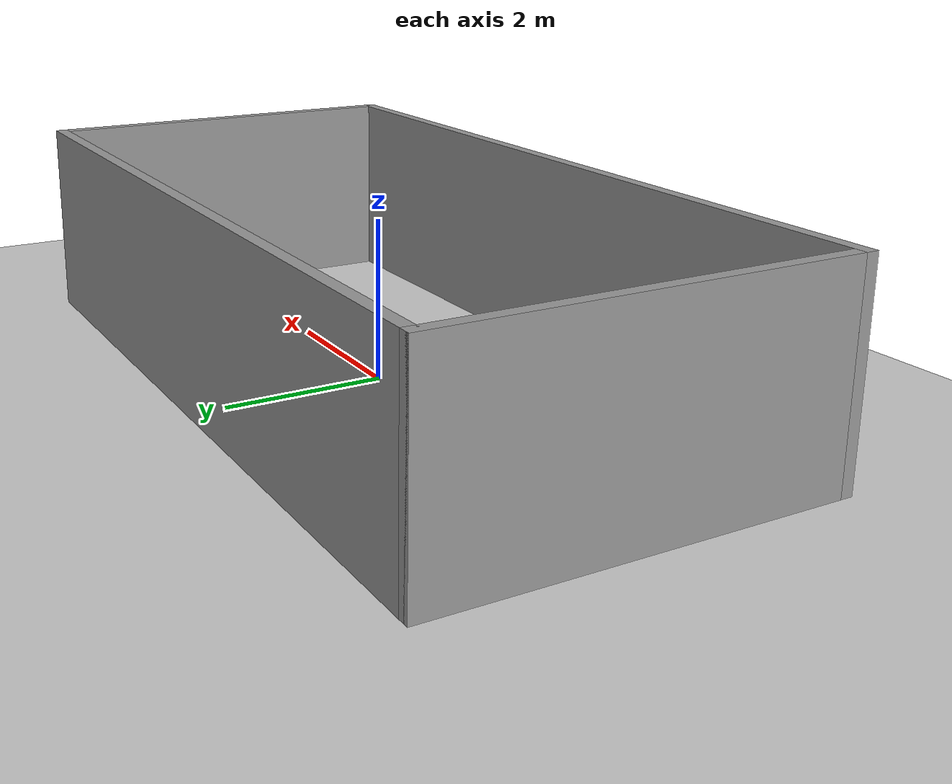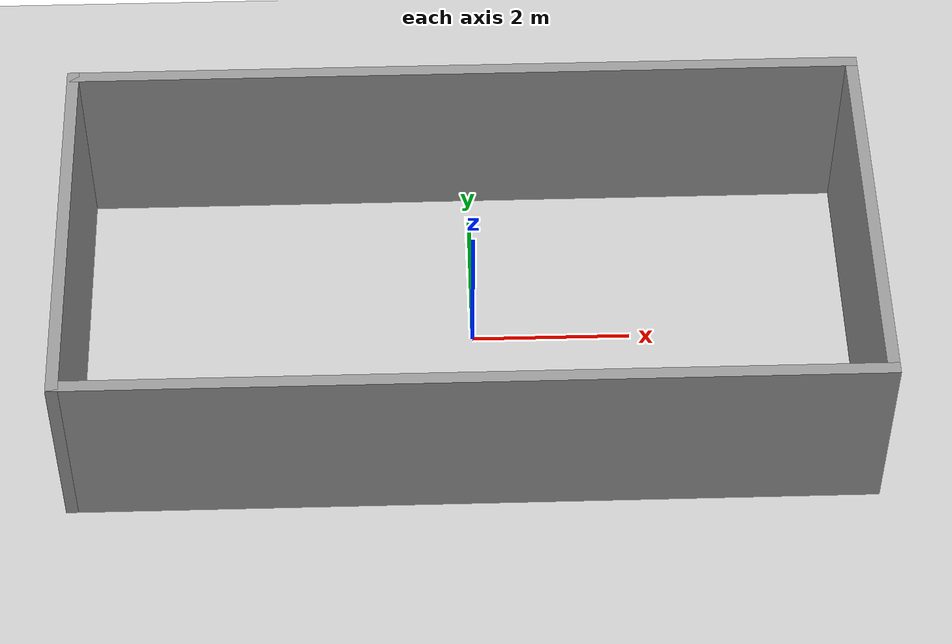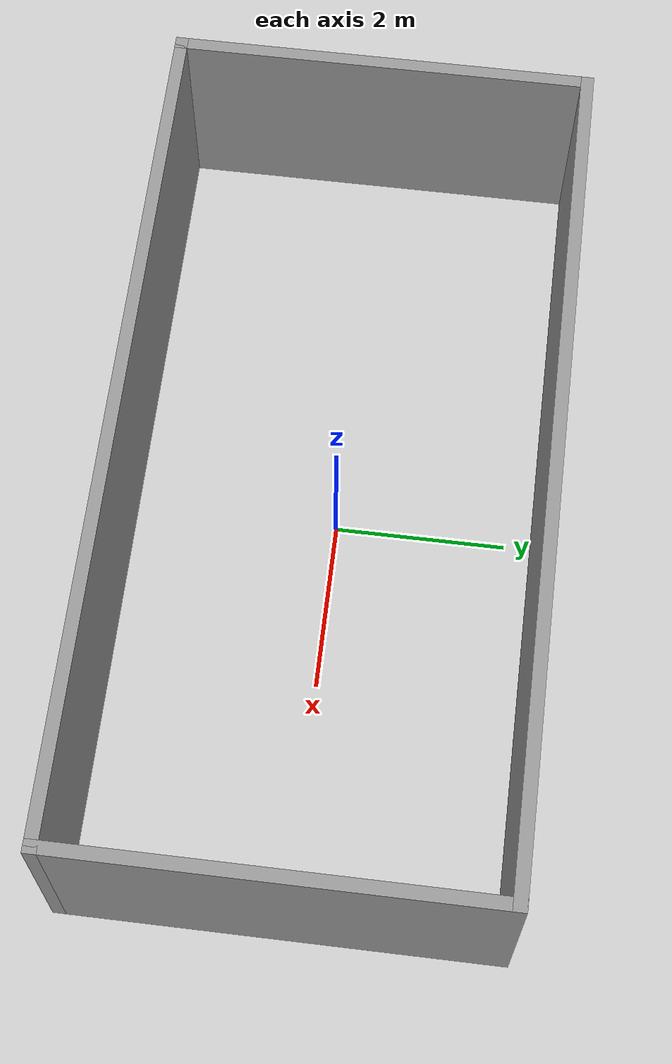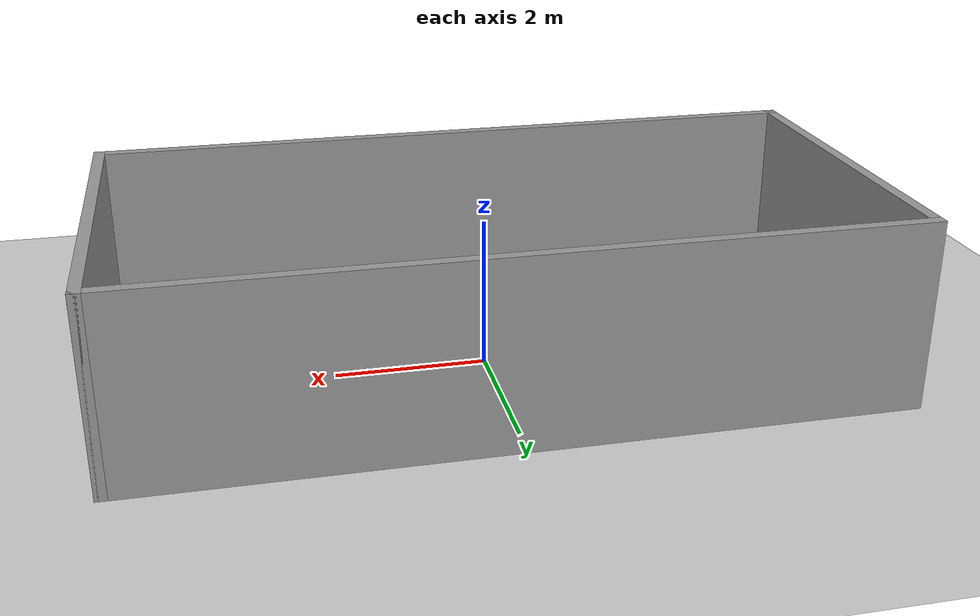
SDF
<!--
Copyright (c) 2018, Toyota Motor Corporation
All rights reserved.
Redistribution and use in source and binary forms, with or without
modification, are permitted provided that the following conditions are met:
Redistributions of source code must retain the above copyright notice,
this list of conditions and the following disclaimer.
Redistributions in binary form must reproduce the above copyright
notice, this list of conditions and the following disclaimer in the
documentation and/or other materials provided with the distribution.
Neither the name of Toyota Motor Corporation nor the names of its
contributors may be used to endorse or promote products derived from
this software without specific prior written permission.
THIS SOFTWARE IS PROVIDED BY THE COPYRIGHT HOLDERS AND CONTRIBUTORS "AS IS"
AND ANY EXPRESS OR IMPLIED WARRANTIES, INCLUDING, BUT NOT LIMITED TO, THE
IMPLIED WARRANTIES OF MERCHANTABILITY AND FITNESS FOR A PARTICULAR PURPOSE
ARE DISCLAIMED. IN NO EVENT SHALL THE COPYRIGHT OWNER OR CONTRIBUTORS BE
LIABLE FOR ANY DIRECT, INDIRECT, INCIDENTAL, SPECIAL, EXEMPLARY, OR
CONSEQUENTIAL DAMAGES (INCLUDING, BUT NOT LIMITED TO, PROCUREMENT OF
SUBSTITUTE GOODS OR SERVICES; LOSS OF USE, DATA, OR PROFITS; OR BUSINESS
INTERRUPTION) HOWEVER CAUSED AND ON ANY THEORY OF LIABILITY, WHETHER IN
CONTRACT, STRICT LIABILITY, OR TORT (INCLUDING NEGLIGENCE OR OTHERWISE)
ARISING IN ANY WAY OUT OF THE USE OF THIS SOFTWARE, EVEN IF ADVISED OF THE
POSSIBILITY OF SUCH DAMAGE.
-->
<sdf version="1.4">
 <world name="default">
  <light name="sun" type="directional">
   <pose>0 0 10 0 -0 0</pose>
   <diffuse>0.8 0.8 0.8 1</diffuse>
   <specular>0.2 0.2 0.2 1</specular>
   <attenuation>
    <range>1000</range>
    <constant>0.9</constant>
    <linear>0.01</linear>
    <quadratic>0.001</quadratic>
   </attenuation>
   <direction>-0.5 0.1 -0.9</direction>
  </light>
  <model name="ground_plane">
   <static>1</static>
   <link name="link">
    <collision name="collision">
     <geometry><plane><normal>0 0 1</normal><size>100 100</size></plane></geometry>
     <surface><friction><ode><mu>100</mu><mu2>50</mu2></ode></friction></surface>
    </collision>
    <visual name="visual">
     <cast_shadows>0</cast_shadows>
     <geometry><plane><normal>0 0 1</normal><size>100 100</size></plane></geometry>
     <material>
      <script><uri>file://media/materials/scripts/gazebo.material</uri><name>Gazebo/Grey</name></script>
     </material>
    </visual>
   </link>
  </model>
  <physics type="ode"/>
  <scene><ambient>0.4 0.4 0.4 1</ambient><background>0.7 0.7 0.7 1</background><shadows>0</shadows></scene>
  <model name="test">
   <pose>-0.065828 -0.039888 0 0 -0 0</pose>
   <link name="Wall_1">
    <collision name="Wall_1_Collision">
     <geometry><box><size>5 0.15 2.5</size></box></geometry>
     <pose>0 0 1.25 0 -0 0</pose>
    </collision>
    <visual name="Wall_1_Visual">
     <pose>0 0 1.25 0 -0 0</pose>
     <geometry><box><size>5 0.15 2.5</size></box></geometry>
     <material>
      <script><uri>file://media/materials/scripts/gazebo.material</uri><name>Gazebo/Grey</name></script>
      <ambient>1 1 1 1</ambient>
     </material>
    </visual>
    <pose>-4.925 0 0 0 -0 1.5708</pose>
   </link>
   <link name="Wall_2">
    <collision name="Wall_2_Collision">
     <geometry><box><size>10 0.15 2.5</size></box></geometry>
     <pose>0 0 1.25 0 -0 0</pose>
    </collision>
    <visual name="Wall_2_Visual">
     <pose>0 0 1.25 0 -0 0</pose>
     <geometry><box><size>10 0.15 2.5</size></box></geometry>
     <material>
      <script><uri>file://media/materials/scripts/gazebo.material</uri><name>Gazebo/Grey</name></script>
      <ambient>1 1 1 1</ambient>
     </material>
    </visual>
    <pose>0 2.425 0 0 -0 0</pose>
   </link>
   <link name="Wall_3">
    <collision name="Wall_3_Collision">
     <geometry><box><size>5 0.15 2.5</size></box></geometry>
     <pose>0 0 1.25 0 -0 0</pose>
    </collision>
    <visual name="Wall_3_Visual">
     <pose>0 0 1.25 0 -0 0</pose>
     <geometry><box><size>5 0.15 2.5</size></box></geometry>
     <material>
      <script><uri>file://media/materials/scripts/gazebo.material</uri><name>Gazebo/Grey</name></script>
      <ambient>1 1 1 1</ambient>
     </material>
    </visual>
    <pose>4.925 0 0 0 0 -1.5708</pose>
   </link>
   <link name="Wall_4">
    <collision name="Wall_4_Collision">
     <geometry><box><size>10 0.15 2.5</size></box></geometry>
     <pose>0 0 1.25 0 -0 0</pose>
    </collision>
    <visual name="Wall_4_Visual">
     <pose>0 0 1.25 0 -0 0</pose>
     <geometry><box><size>10 0.15 2.5</size></box></geometry>
     <material>
      <script><uri>file://media/materials/scripts/gazebo.material</uri><name>Gazebo/Grey</name></script>
      <ambient>1 1 1 1</ambient>
     </material>
    </visual>
    <pose>0 -2.425 0 0 -0 3.14159</pose>
   </link>
   <static>1</static>
  </model>
 </world>
</sdf>
